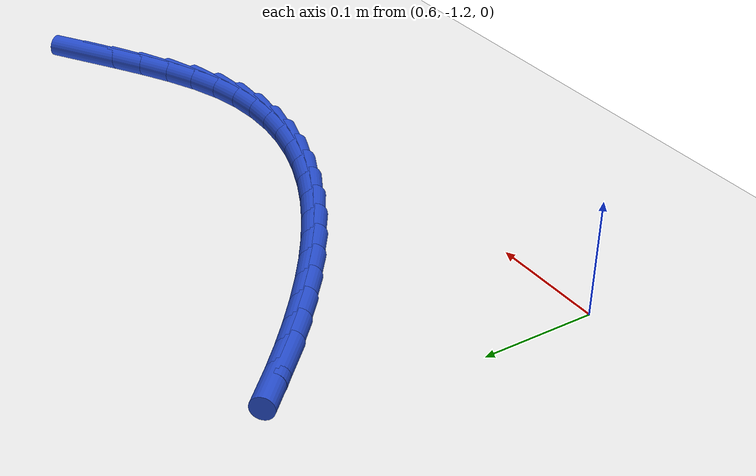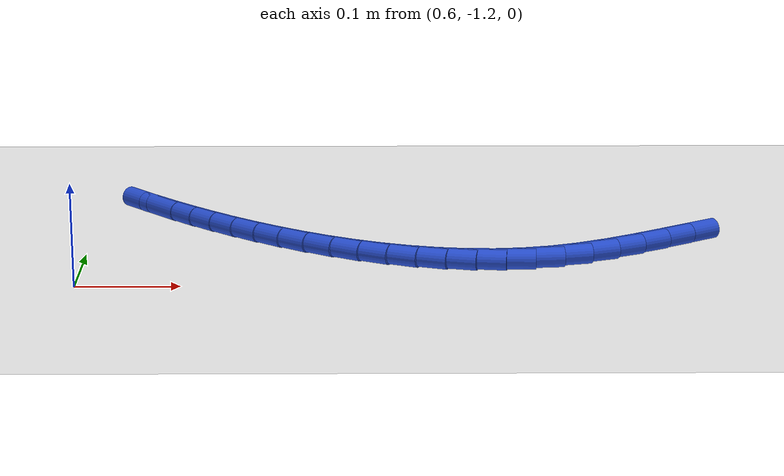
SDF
<sdf version="1.6">
 <world name="default">
  <model name="ground_plane">
   <static>1</static>
   <link name="link">
    <collision name="collision">
     <geometry><plane><normal>0 0 1</normal><size>100 100</size></plane></geometry>
     <surface><friction><ode><mu>100</mu><mu2>50</mu2></ode></friction></surface>
    </collision>
    <visual name="visual">
     <cast_shadows>0</cast_shadows>
     <geometry><plane><normal>0 0 1</normal><size>100 100</size></plane></geometry>
     <material>
      <script><uri>file://media/materials/scripts/gazebo.material</uri><name>Gazebo/WhiteGlow</name></script>
     </material>
    </visual>
   </link>
  </model>
  <model name="line">
   <link name="link_195">
    <pose>1.1868929033494895 -1.0678055440468004 0.01 0 1.57 0.5682737252330478</pose>
    <collision name="collision">
     <geometry><cylinder><radius>0.01</radius><length>0.08</length></cylinder></geometry>
    </collision>
    <visual name="visual">
     <material>
      <script><name>Gazebo/Blue</name><uri>file://media/materials/scripts/gazebo.material</uri></script>
     </material>
     <geometry><cylinder><radius>0.01</radius><length>0.08</length></cylinder></geometry>
    </visual>
   </link>
   <link name="link_196">
    <pose>1.1605546995581353 -1.0846234285606944 0.01 0 1.57 0.5500634643166249</pose>
    <collision name="collision">
     <geometry><cylinder><radius>0.01</radius><length>0.08</length></cylinder></geometry>
    </collision>
    <visual name="visual">
     <material>
      <script><name>Gazebo/Blue</name><uri>file://media/materials/scripts/gazebo.material</uri></script>
     </material>
     <geometry><cylinder><radius>0.01</radius><length>0.08</length></cylinder></geometry>
    </visual>
   </link>
   <link name="link_197">
    <pose>1.1338963634690666 -1.1009701213023488 0.01 0 1.57 0.5087264754021947</pose>
    <collision name="collision">
     <geometry><cylinder><radius>0.01</radius><length>0.08</length></cylinder></geometry>
    </collision>
    <visual name="visual">
     <material>
      <script><name>Gazebo/Blue</name><uri>file://media/materials/scripts/gazebo.material</uri></script>
     </material>
     <geometry><cylinder><radius>0.01</radius><length>0.08</length></cylinder></geometry>
    </visual>
   </link>
   <link name="link_198">
    <pose>1.1069579024005902 -1.1159933755483553 0.01 0 1.57 0.44157773543214285</pose>
    <collision name="collision">
     <geometry><cylinder><radius>0.01</radius><length>0.08</length></cylinder></geometry>
    </collision>
    <visual name="visual">
     <material>
      <script><name>Gazebo/Blue</name><uri>file://media/materials/scripts/gazebo.material</uri></script>
     </material>
     <geometry><cylinder><radius>0.01</radius><length>0.08</length></cylinder></geometry>
    </visual>
   </link>
   <link name="link_199">
    <pose>1.0797793236710105 -1.1288409445753063 0.01 0 1.57 0.34436869927572694</pose>
    <collision name="collision">
     <geometry><cylinder><radius>0.01</radius><length>0.08</length></cylinder></geometry>
    </collision>
    <visual name="visual">
     <material>
      <script><name>Gazebo/Blue</name><uri>file://media/materials/scripts/gazebo.material</uri></script>
     </material>
     <geometry><cylinder><radius>0.01</radius><length>0.08</length></cylinder></geometry>
    </visual>
   </link>
   <link name="link_200">
    <pose>1.0524006345987333 -1.1386605816621267 0.01 0 1.57 0.21901438874874685</pose>
    <collision name="collision">
     <geometry><cylinder><radius>0.01</radius><length>0.08</length></cylinder></geometry>
    </collision>
    <visual name="visual">
     <material>
      <script><name>Gazebo/Blue</name><uri>file://media/materials/scripts/gazebo.material</uri></script>
     </material>
     <geometry><cylinder><radius>0.01</radius><length>0.08</length></cylinder></geometry>
    </visual>
   </link>
   <link name="link_201">
    <pose>1.0248700121832202 -1.1447884784207174 0.01 0 1.57 0.09107704219398702</pose>
    <collision name="collision">
     <geometry><cylinder><radius>0.01</radius><length>0.08</length></cylinder></geometry>
    </collision>
    <visual name="visual">
     <material>
      <script><name>Gazebo/Blue</name><uri>file://media/materials/scripts/gazebo.material</uri></script>
     </material>
     <geometry><cylinder><radius>0.01</radius><length>0.08</length></cylinder></geometry>
    </visual>
   </link>
   <link name="link_202">
    <pose>0.9972680856009674 -1.1473093543554547 0.01 0 1.57 -0.02955833401404246</pose>
    <collision name="collision">
     <geometry><cylinder><radius>0.01</radius><length>0.08</length></cylinder></geometry>
    </collision>
    <visual name="visual">
     <material>
      <script><name>Gazebo/Blue</name><uri>file://media/materials/scripts/gazebo.material</uri></script>
     </material>
     <geometry><cylinder><radius>0.01</radius><length>0.08</length></cylinder></geometry>
    </visual>
   </link>
   <link name="link_203">
    <pose>0.9696835408280223 -1.1464937636277177 0.01 0 1.57 -0.14032770837099198</pose>
    <collision name="collision">
     <geometry><cylinder><radius>0.01</radius><length>0.08</length></cylinder></geometry>
    </collision>
    <visual name="visual">
     <material>
      <script><name>Gazebo/Blue</name><uri>file://media/materials/scripts/gazebo.material</uri></script>
     </material>
     <geometry><cylinder><radius>0.01</radius><length>0.08</length></cylinder></geometry>
    </visual>
   </link>
   <link name="link_204">
    <pose>0.9422050638404329 -1.1426122603988853 0.01 0 1.57 -0.24000272438552023</pose>
    <collision name="collision">
     <geometry><cylinder><radius>0.01</radius><length>0.08</length></cylinder></geometry>
    </collision>
    <visual name="visual">
     <material>
      <script><name>Gazebo/Blue</name><uri>file://media/materials/scripts/gazebo.material</uri></script>
     </material>
     <geometry><cylinder><radius>0.01</radius><length>0.08</length></cylinder></geometry>
    </visual>
   </link>
   <link name="link_205">
    <pose>0.9149213406142481 -1.1359353988303376 0.01 0 1.57 -0.3284544105453013</pose>
    <collision name="collision">
     <geometry><cylinder><radius>0.01</radius><length>0.08</length></cylinder></geometry>
    </collision>
    <visual name="visual">
     <material>
      <script><name>Gazebo/Blue</name><uri>file://media/materials/scripts/gazebo.material</uri></script>
     </material>
     <geometry><cylinder><radius>0.01</radius><length>0.08</length></cylinder></geometry>
    </visual>
   </link>
   <link name="link_206">
    <pose>0.8879210571255154 -1.1267337330834537 0.01 0 1.57 -0.40628212003170927</pose>
    <collision name="collision">
     <geometry><cylinder><radius>0.01</radius><length>0.08</length></cylinder></geometry>
    </collision>
    <visual name="visual">
     <material>
      <script><name>Gazebo/Blue</name><uri>file://media/materials/scripts/gazebo.material</uri></script>
     </material>
     <geometry><cylinder><radius>0.01</radius><length>0.08</length></cylinder></geometry>
    </visual>
   </link>
   <link name="link_207">
    <pose>0.8612928993502831 -1.1152778173196134 0.01 0 1.57 -0.4744702147622824</pose>
    <collision name="collision">
     <geometry><cylinder><radius>0.01</radius><length>0.08</length></cylinder></geometry>
    </collision>
    <visual name="visual">
     <material>
      <script><name>Gazebo/Blue</name><uri>file://media/materials/scripts/gazebo.material</uri></script>
     </material>
     <geometry><cylinder><radius>0.01</radius><length>0.08</length></cylinder></geometry>
    </visual>
   </link>
   <link name="link_208">
    <pose>0.8351255532645981 -1.1018382057001952 0.01 0 1.57 -0.5341401568288712</pose>
    <collision name="collision">
     <geometry><cylinder><radius>0.01</radius><length>0.08</length></cylinder></geometry>
    </collision>
    <visual name="visual">
     <material>
      <script><name>Gazebo/Blue</name><uri>file://media/materials/scripts/gazebo.material</uri></script>
     </material>
     <geometry><cylinder><radius>0.01</radius><length>0.08</length></cylinder></geometry>
    </visual>
   </link>
   <link name="link_209">
    <pose>0.80950770484451 -1.0866854523865797 0.01 0 1.57 -0.5863998347652024</pose>
    <collision name="collision">
     <geometry><cylinder><radius>0.01</radius><length>0.08</length></cylinder></geometry>
    </collision>
    <visual name="visual">
     <material>
      <script><name>Gazebo/Blue</name><uri>file://media/materials/scripts/gazebo.material</uri></script>
     </material>
     <geometry><cylinder><radius>0.01</radius><length>0.08</length></cylinder></geometry>
    </visual>
   </link>
   <link name="link_210">
    <pose>0.7845280400660654 -1.0700901115401453 0.01 0 1.57 -0.6322657922310913</pose>
    <collision name="collision">
     <geometry><cylinder><radius>0.01</radius><length>0.08</length></cylinder></geometry>
    </collision>
    <visual name="visual">
     <material>
      <script><name>Gazebo/Blue</name><uri>file://media/materials/scripts/gazebo.material</uri></script>
     </material>
     <geometry><cylinder><radius>0.01</radius><length>0.08</length></cylinder></geometry>
    </visual>
   </link>
   <link name="link_211">
    <pose>0.7602752449053127 -1.0523227373222719 0.01 0 1.57 -0.6726316587407731</pose>
    <collision name="collision">
     <geometry><cylinder><radius>0.01</radius><length>0.08</length></cylinder></geometry>
    </collision>
    <visual name="visual">
     <material>
      <script><name>Gazebo/Blue</name><uri>file://media/materials/scripts/gazebo.material</uri></script>
     </material>
     <geometry><cylinder><radius>0.01</radius><length>0.08</length></cylinder></geometry>
    </visual>
   </link>
   <link name="link_212">
    <pose>0.7368380053383001 -1.0336538838943383 0.01 0 1.57 -0.7082623677386191</pose>
    <collision name="collision">
     <geometry><cylinder><radius>0.01</radius><length>0.08</length></cylinder></geometry>
    </collision>
    <visual name="visual">
     <material>
      <script><name>Gazebo/Blue</name><uri>file://media/materials/scripts/gazebo.material</uri></script>
     </material>
     <geometry><cylinder><radius>0.01</radius><length>0.08</length></cylinder></geometry>
    </visual>
   </link>
   <link name="link_213">
    <pose>0.7143050073410748 -1.0143541054177243 0.01 0 1.57 -0.7398019771024037</pose>
    <collision name="collision">
     <geometry><cylinder><radius>0.01</radius><length>0.08</length></cylinder></geometry>
    </collision>
    <visual name="visual">
     <material>
      <script><name>Gazebo/Blue</name><uri>file://media/materials/scripts/gazebo.material</uri></script>
     </material>
     <geometry><cylinder><radius>0.01</radius><length>0.08</length></cylinder></geometry>
    </visual>
   </link>
   <link name="link_214">
    <pose>0.6927648805345902 -0.9946938613442875 0.01 0 1.57 -0.7686257645002944</pose>
    <collision name="collision">
     <geometry><cylinder><radius>0.01</radius><length>0.08</length></cylinder></geometry>
    </collision>
    <visual name="visual">
     <material>
      <script><name>Gazebo/Blue</name><uri>file://media/materials/scripts/gazebo.material</uri></script>
     </material>
     <geometry><cylinder><radius>0.01</radius><length>0.08</length></cylinder></geometry>
    </visual>
   </link>
   <link name="link_215">
    <pose>0.6722595130765221 -0.9748650581293113 0.01 0 1.57 -0.7971741799501356</pose>
    <collision name="collision">
     <geometry><cylinder><radius>0.01</radius><length>0.08</length></cylinder></geometry>
    </collision>
    <visual name="visual">
     <material>
      <script><name>Gazebo/Blue</name><uri>file://media/materials/scripts/gazebo.material</uri></script>
     </material>
     <geometry><cylinder><radius>0.01</radius><length>0.08</length></cylinder></geometry>
    </visual>
   </link>
   <link name="link_216">
    <pose>0.6526993516709267 -0.9548387037081733 0.01 0 1.57 -0.825459829142206</pose>
    <collision name="collision">
     <geometry><cylinder><radius>0.01</radius><length>0.08</length></cylinder></geometry>
    </collision>
    <visual name="visual">
     <material>
      <script><name>Gazebo/Blue</name><uri>file://media/materials/scripts/gazebo.material</uri></script>
     </material>
     <geometry><cylinder><radius>0.01</radius><length>0.08</length></cylinder></geometry>
    </visual>
   </link>
  </model>
 </world>
</sdf>
